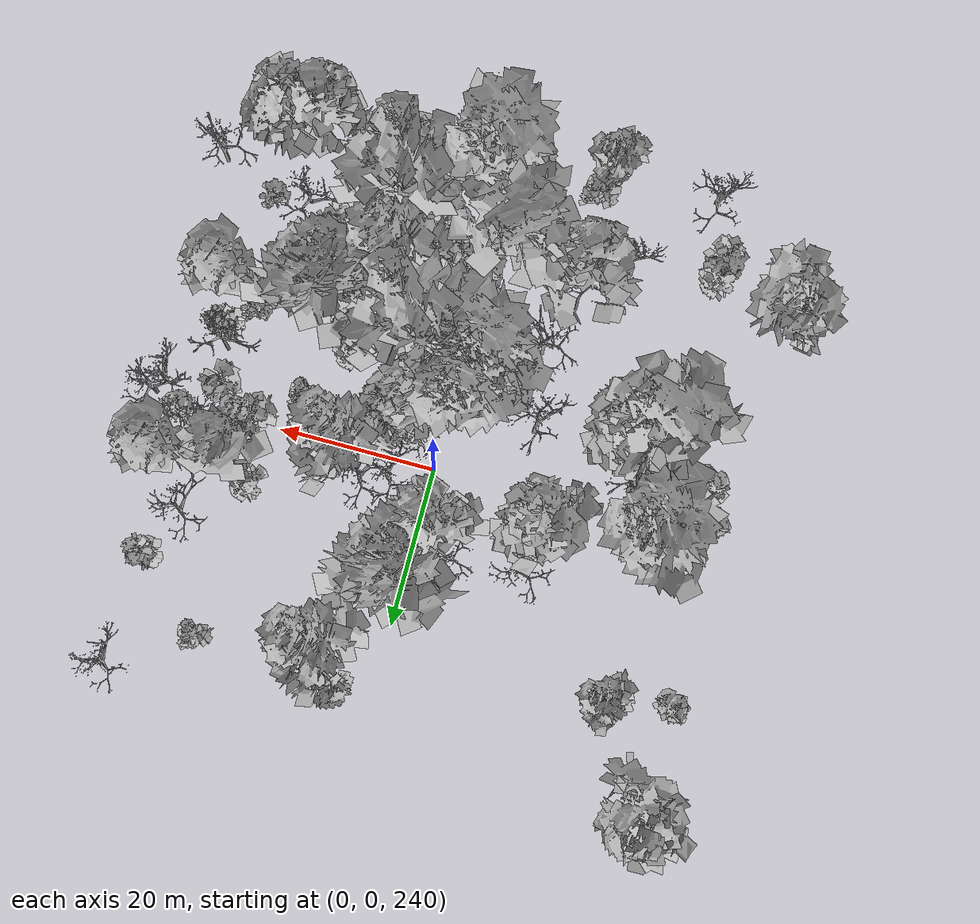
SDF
<sdf version="1.6">
 <world name="default">
  <light name="sun" type="directional">
   <pose>0 0 10 0 -0 0</pose>
   <diffuse>0.8 0.8 0.8 1</diffuse>
   <specular>0.2 0.2 0.2 1</specular>
   <attenuation>
    <range>1000</range>
    <constant>0.9</constant>
    <linear>0.01</linear>
    <quadratic>0.001</quadratic>
   </attenuation>
   <direction>-0.5 0.1 -0.9</direction>
  </light>
  <scene>
   <sky><clouds><speed>12</speed></clouds></sky>
   <ambient>0.4 0.4 0.4 1</ambient>
   <background>0.7 0.7 0.7 1</background>
   <shadows>1</shadows>
  </scene>
  <spherical_coordinates>
   <surface_model>EARTH_WGS84</surface_model>
   <latitude_deg>47.3977</latitude_deg>
   <longitude_deg>8.54559</longitude_deg>
   <elevation>0</elevation>
   <heading_deg>0</heading_deg>
  </spherical_coordinates>
  <physics name="default_physics" default="0" type="ode">
   <ode>
    <solver>
     <type>quick</type>
     <iters>100</iters>
     <sor>1.3</sor>
     <use_dynamic_moi_rescaling>0</use_dynamic_moi_rescaling>
    </solver>
    <constraints>
     <cfm>0</cfm>
     <erp>0.2</erp>
     <contact_max_correcting_vel>100</contact_max_correcting_vel>
     <contact_surface_layer>0.001</contact_surface_layer>
    </constraints>
   </ode>
   <max_step_size>0.002</max_step_size>
   <real_time_factor>1</real_time_factor>
   <real_time_update_rate>500</real_time_update_rate>
  </physics>
  <gravity>0 0 -9.8</gravity>
  <magnetic_field>6e-06 2.3e-05 -4.2e-05</magnetic_field>
  <atmosphere type="adiabatic"/>
  <model name="my_mesh0">
   <pose>-13.9708 3.09755 250.69 0 0 -1.128</pose>
   <static>1</static>
   <link name="body">
    <visual name="visual">
     <geometry><mesh><uri>model://trees/6.dae</uri><scale>1 1 1</scale></mesh></geometry>
    </visual>
    <collision name="collision">
     <geometry><mesh><uri>model://trees/6.dae</uri><scale>1 1 1</scale></mesh></geometry>
    </collision>
   </link>
  </model>
  <model name="my_mesh1">
   <pose>6.29537 -28.0253 255.617 0 -0 1.50792</pose>
   <static>1</static>
   <link name="body">
    <visual name="visual">
     <geometry><mesh><uri>model://trees/5.dae</uri><scale>1 1 1</scale></mesh></geometry>
    </visual>
    <collision name="collision">
     <geometry><mesh><uri>model://trees/5.dae</uri><scale>1 1 1</scale></mesh></geometry>
    </collision>
   </link>
  </model>
  <model name="my_mesh2">
   <pose>19.314 -17.7435 251.019 0 0 -0.445499</pose>
   <static>1</static>
   <link name="body">
    <visual name="visual">
     <geometry><mesh><uri>model://trees/13.dae</uri><scale>1 1 1</scale></mesh></geometry>
    </visual>
    <collision name="collision">
     <geometry><mesh><uri>model://trees/13.dae</uri><scale>1 1 1</scale></mesh></geometry>
    </collision>
   </link>
  </model>
  <model name="my_mesh3">
   <pose>3.94699 -5.31755 250.844 0 0 -0.624479</pose>
   <static>1</static>
   <link name="body">
    <visual name="visual">
     <geometry><mesh><uri>model://trees/13.dae</uri><scale>1 1 1</scale></mesh></geometry>
    </visual>
    <collision name="collision">
     <geometry><mesh><uri>model://trees/13.dae</uri><scale>1 1 1</scale></mesh></geometry>
    </collision>
   </link>
  </model>
  <model name="my_mesh4">
   <pose>4.03975 -10.9559 251.443 0 -0 0.019707</pose>
   <static>1</static>
   <link name="body">
    <visual name="visual">
     <geometry><mesh><uri>model://trees/16.dae</uri><scale>1 1 1</scale></mesh></geometry>
    </visual>
    <collision name="collision">
     <geometry><mesh><uri>model://trees/16.dae</uri><scale>1 1 1</scale></mesh></geometry>
    </collision>
   </link>
  </model>
  <model name="my_mesh5">
   <pose>-9.25556 -14.4743 253.795 0 -0 0.850419</pose>
   <static>1</static>
   <link name="body">
    <visual name="visual">
     <geometry><mesh><uri>model://trees/17.dae</uri><scale>1 1 1</scale></mesh></geometry>
    </visual>
    <collision name="collision">
     <geometry><mesh><uri>model://trees/17.dae</uri><scale>1 1 1</scale></mesh></geometry>
    </collision>
   </link>
  </model>
  <model name="my_mesh6">
   <pose>18.851 -15.1206 249.974 0 -0 0.692385</pose>
   <static>1</static>
   <link name="body">
    <visual name="visual">
     <geometry><mesh><uri>model://trees/3.dae</uri><scale>1 1 1</scale></mesh></geometry>
    </visual>
    <collision name="collision">
     <geometry><mesh><uri>model://trees/3.dae</uri><scale>1 1 1</scale></mesh></geometry>
    </collision>
   </link>
  </model>
  <model name="my_mesh7">
   <pose>-0.079668 -7.48304 251.797 0 -0 1.39965</pose>
   <static>1</static>
   <link name="body">
    <visual name="visual">
     <geometry><mesh><uri>model://trees/9.dae</uri><scale>1 1 1</scale></mesh></geometry>
    </visual>
    <collision name="collision">
     <geometry><mesh><uri>model://trees/9.dae</uri><scale>1 1 1</scale></mesh></geometry>
    </collision>
   </link>
  </model>
  <model name="my_mesh8">
   <pose>3.18366 -1.82805 250.547 0 0 -0.664564</pose>
   <static>1</static>
   <link name="body">
    <visual name="visual">
     <geometry><mesh><uri>model://trees/1.dae</uri><scale>1 1 1</scale></mesh></geometry>
    </visual>
    <collision name="collision">
     <geometry><mesh><uri>model://trees/1.dae</uri><scale>1 1 1</scale></mesh></geometry>
    </collision>
   </link>
  </model>
  <model name="my_mesh9">
   <pose>-10.6856 -5.44088 252.218 0 0 -0.593158</pose>
   <static>1</static>
   <link name="body">
    <visual name="visual">
     <geometry><mesh><uri>model://trees/16.dae</uri><scale>1 1 1</scale></mesh></geometry>
    </visual>
    <collision name="collision">
     <geometry><mesh><uri>model://trees/16.dae</uri><scale>1 1 1</scale></mesh></geometry>
    </collision>
   </link>
  </model>
  <model name="my_mesh10">
   <pose>-7.51004 -10.7944 252.886 0 -0 1.51829</pose>
   <static>1</static>
   <link name="body">
    <visual name="visual">
     <geometry><mesh><uri>model://trees/17.dae</uri><scale>1 1 1</scale></mesh></geometry>
    </visual>
    <collision name="collision">
     <geometry><mesh><uri>model://trees/17.dae</uri><scale>1 1 1</scale></mesh></geometry>
    </collision>
   </link>
  </model>
  <model name="my_mesh11">
   <pose>0.045641 -21.3443 253.905 0 -0 0.552601</pose>
   <static>1</static>
   <link name="body">
    <visual name="visual">
     <geometry><mesh><uri>model://trees/7.dae</uri><scale>1 1 1</scale></mesh></geometry>
    </visual>
    <collision name="collision">
     <geometry><mesh><uri>model://trees/7.dae</uri><scale>1 1 1</scale></mesh></geometry>
    </collision>
   </link>
  </model>
  <model name="my_mesh12">
   <pose>10.5547 1.24069 248.911 0 0 -0.383506</pose>
   <static>1</static>
   <link name="body">
    <visual name="visual">
     <geometry><mesh><uri>model://trees/8.dae</uri><scale>1 1 1</scale></mesh></geometry>
    </visual>
    <collision name="collision">
     <geometry><mesh><uri>model://trees/8.dae</uri><scale>1 1 1</scale></mesh></geometry>
    </collision>
   </link>
  </model>
  <model name="my_mesh13">
   <pose>-3.54292 -13.0808 252.897 0 -0 0.818565</pose>
   <static>1</static>
   <link name="body">
    <visual name="visual">
     <geometry><mesh><uri>model://trees/6.dae</uri><scale>1 1 1</scale></mesh></geometry>
    </visual>
    <collision name="collision">
     <geometry><mesh><uri>model://trees/6.dae</uri><scale>1 1 1</scale></mesh></geometry>
    </collision>
   </link>
  </model>
  <model name="my_mesh14">
   <pose>5.86461 -22.409 253.516 0 0 -0.251076</pose>
   <static>1</static>
   <link name="body">
    <visual name="visual">
     <geometry><mesh><uri>model://trees/6.dae</uri><scale>1 1 1</scale></mesh></geometry>
    </visual>
    <collision name="collision">
     <geometry><mesh><uri>model://trees/6.dae</uri><scale>1 1 1</scale></mesh></geometry>
    </collision>
   </link>
  </model>
  <model name="my_mesh15">
   <pose>0.625907 -19.9935 253.46 0 -0 1.49771</pose>
   <static>1</static>
   <link name="body">
    <visual name="visual">
     <geometry><mesh><uri>model://trees/6.dae</uri><scale>1 1 1</scale></mesh></geometry>
    </visual>
    <collision name="collision">
     <geometry><mesh><uri>model://trees/6.dae</uri><scale>1 1 1</scale></mesh></geometry>
    </collision>
   </link>
  </model>
  <model name="my_mesh16">
   <pose>-2.48042 -13.4735 252.863 0 0 -0.153819</pose>
   <static>1</static>
   <link name="body">
    <visual name="visual">
     <geometry><mesh><uri>model://trees/1.dae</uri><scale>1 1 1</scale></mesh></geometry>
    </visual>
    <collision name="collision">
     <geometry><mesh><uri>model://trees/1.dae</uri><scale>1 1 1</scale></mesh></geometry>
    </collision>
   </link>
  </model>
  <model name="my_mesh17">
   <pose>3.21184 -23.3343 253.961 0 0 -0.494991</pose>
   <static>1</static>
   <link name="body">
    <visual name="visual">
     <geometry><mesh><uri>model://trees/4.dae</uri><scale>1 1 1</scale></mesh></geometry>
    </visual>
    <collision name="collision">
     <geometry><mesh><uri>model://trees/4.dae</uri><scale>1 1 1</scale></mesh></geometry>
    </collision>
   </link>
  </model>
  <model name="my_mesh18">
   <pose>26.1369 -24.3365 251.517 0 -0 1.01427</pose>
   <static>1</static>
   <link name="body">
    <visual name="visual">
     <geometry><mesh><uri>model://trees/3.dae</uri><scale>1 1 1</scale></mesh></geometry>
    </visual>
    <collision name="collision">
     <geometry><mesh><uri>model://trees/3.dae</uri><scale>1 1 1</scale></mesh></geometry>
    </collision>
   </link>
  </model>
  <model name="my_mesh19">
   <pose>-10.9685 -31.8547 259.128 0 0 -1.01991</pose>
   <static>1</static>
   <link name="body">
    <visual name="visual">
     <geometry><mesh><uri>model://trees/6.dae</uri><scale>1 1 1</scale></mesh></geometry>
    </visual>
    <collision name="collision">
     <geometry><mesh><uri>model://trees/6.dae</uri><scale>1 1 1</scale></mesh></geometry>
    </collision>
   </link>
  </model>
  <model name="my_mesh20">
   <pose>28.748 -9.46557 246.392 0 0 -0.616625</pose>
   <static>1</static>
   <link name="body">
    <visual name="visual">
     <geometry><mesh><uri>model://trees/4.dae</uri><scale>1 1 1</scale></mesh></geometry>
    </visual>
    <collision name="collision">
     <geometry><mesh><uri>model://trees/4.dae</uri><scale>1 1 1</scale></mesh></geometry>
    </collision>
   </link>
  </model>
  <model name="my_mesh21">
   <pose>7.94749 4.43144 248.527 0 0 -0.289992</pose>
   <static>1</static>
   <link name="body">
    <visual name="visual">
     <geometry><mesh><uri>model://trees/19.dae</uri><scale>1 1 1</scale></mesh></geometry>
    </visual>
    <collision name="collision">
     <geometry><mesh><uri>model://trees/19.dae</uri><scale>1 1 1</scale></mesh></geometry>
    </collision>
   </link>
  </model>
  <model name="my_mesh22">
   <pose>22.0641 1.58668 246.744 0 0 -0.15367</pose>
   <static>1</static>
   <link name="body">
    <visual name="visual">
     <geometry><mesh><uri>model://trees/7.dae</uri><scale>1 1 1</scale></mesh></geometry>
    </visual>
    <collision name="collision">
     <geometry><mesh><uri>model://trees/7.dae</uri><scale>1 1 1</scale></mesh></geometry>
    </collision>
   </link>
  </model>
  <model name="my_mesh23">
   <pose>25.8153 -32.8797 254.311 0 -0 0.733838</pose>
   <static>1</static>
   <link name="body">
    <visual name="visual">
     <geometry><mesh><uri>model://trees/15.dae</uri><scale>1 1 1</scale></mesh></geometry>
    </visual>
    <collision name="collision">
     <geometry><mesh><uri>model://trees/15.dae</uri><scale>1 1 1</scale></mesh></geometry>
    </collision>
   </link>
  </model>
  <model name="my_mesh24">
   <pose>-26.2688 -27.6574 260.79 0 -0 1.55606</pose>
   <static>1</static>
   <link name="body">
    <visual name="visual">
     <geometry><mesh><uri>model://trees/4.dae</uri><scale>1 1 1</scale></mesh></geometry>
    </visual>
    <collision name="collision">
     <geometry><mesh><uri>model://trees/4.dae</uri><scale>1 1 1</scale></mesh></geometry>
    </collision>
   </link>
  </model>
  <model name="my_mesh25">
   <pose>5.76736 -12.9831 251.563 0 0 -0.744155</pose>
   <static>1</static>
   <link name="body">
    <visual name="visual">
     <geometry><mesh><uri>model://trees/10.dae</uri><scale>1 1 1</scale></mesh></geometry>
    </visual>
    <collision name="collision">
     <geometry><mesh><uri>model://trees/10.dae</uri><scale>1 1 1</scale></mesh></geometry>
    </collision>
   </link>
  </model>
  <model name="my_mesh26">
   <pose>5.07359 -17.5445 252.537 0 0 -0.197438</pose>
   <static>1</static>
   <link name="body">
    <visual name="visual">
     <geometry><mesh><uri>model://trees/4.dae</uri><scale>1 1 1</scale></mesh></geometry>
    </visual>
    <collision name="collision">
     <geometry><mesh><uri>model://trees/4.dae</uri><scale>1 1 1</scale></mesh></geometry>
    </collision>
   </link>
  </model>
  <model name="my_mesh27">
   <pose>-25.4239 -9.93499 253.366 0 -0 0.369416</pose>
   <static>1</static>
   <link name="body">
    <visual name="visual">
     <geometry><mesh><uri>model://trees/19.dae</uri><scale>1 1 1</scale></mesh></geometry>
    </visual>
    <collision name="collision">
     <geometry><mesh><uri>model://trees/19.dae</uri><scale>1 1 1</scale></mesh></geometry>
    </collision>
   </link>
  </model>
  <model name="my_mesh28">
   <pose>-12.2494 -23.2065 258.05 0 0 -0.923108</pose>
   <static>1</static>
   <link name="body">
    <visual name="visual">
     <geometry><mesh><uri>model://trees/12.dae</uri><scale>1 1 1</scale></mesh></geometry>
    </visual>
    <collision name="collision">
     <geometry><mesh><uri>model://trees/12.dae</uri><scale>1 1 1</scale></mesh></geometry>
    </collision>
   </link>
  </model>
  <model name="my_mesh29">
   <pose>-3.5124 -24.7743 255.485 0 -0 0.97862</pose>
   <static>1</static>
   <link name="body">
    <visual name="visual">
     <geometry><mesh><uri>model://trees/10.dae</uri><scale>1 1 1</scale></mesh></geometry>
    </visual>
    <collision name="collision">
     <geometry><mesh><uri>model://trees/10.dae</uri><scale>1 1 1</scale></mesh></geometry>
    </collision>
   </link>
  </model>
  <model name="my_mesh30">
   <pose>-15.6952 -25.9732 258.695 0 0 -1.04884</pose>
   <static>1</static>
   <link name="body">
    <visual name="visual">
     <geometry><mesh><uri>model://trees/18.dae</uri><scale>1 1 1</scale></mesh></geometry>
    </visual>
    <collision name="collision">
     <geometry><mesh><uri>model://trees/18.dae</uri><scale>1 1 1</scale></mesh></geometry>
    </collision>
   </link>
  </model>
  <model name="my_mesh31">
   <pose>-1.75816 -12.272 252.581 0 -0 1.15294</pose>
   <static>1</static>
   <link name="body">
    <visual name="visual">
     <geometry><mesh><uri>model://trees/9.dae</uri><scale>1 1 1</scale></mesh></geometry>
    </visual>
    <collision name="collision">
     <geometry><mesh><uri>model://trees/9.dae</uri><scale>1 1 1</scale></mesh></geometry>
    </collision>
   </link>
  </model>
  <model name="my_mesh32">
   <pose>-2.499 -8.95698 252.32 0 0 -0.386374</pose>
   <static>1</static>
   <link name="body">
    <visual name="visual">
     <geometry><mesh><uri>model://trees/6.dae</uri><scale>1 1 1</scale></mesh></geometry>
    </visual>
    <collision name="collision">
     <geometry><mesh><uri>model://trees/6.dae</uri><scale>1 1 1</scale></mesh></geometry>
    </collision>
   </link>
  </model>
  <model name="my_mesh33">
   <pose>6.10235 -16.1639 252.042 0 -0 0.175405</pose>
   <static>1</static>
   <link name="body">
    <visual name="visual">
     <geometry><mesh><uri>model://trees/18.dae</uri><scale>1 1 1</scale></mesh></geometry>
    </visual>
    <collision name="collision">
     <geometry><mesh><uri>model://trees/18.dae</uri><scale>1 1 1</scale></mesh></geometry>
    </collision>
   </link>
  </model>
  <model name="my_mesh34">
   <pose>-13.1437 10.5149 249.153 0 -0 0.3886</pose>
   <static>1</static>
   <link name="body">
    <visual name="visual">
     <geometry><mesh><uri>model://trees/19.dae</uri><scale>1 1 1</scale></mesh></geometry>
    </visual>
    <collision name="collision">
     <geometry><mesh><uri>model://trees/19.dae</uri><scale>1 1 1</scale></mesh></geometry>
    </collision>
   </link>
  </model>
  <model name="my_mesh35">
   <pose>-3.20475 -10.267 252.502 0 0 -1.32056</pose>
   <static>1</static>
   <link name="body">
    <visual name="visual">
     <geometry><mesh><uri>model://trees/8.dae</uri><scale>1 1 1</scale></mesh></geometry>
    </visual>
    <collision name="collision">
     <geometry><mesh><uri>model://trees/8.dae</uri><scale>1 1 1</scale></mesh></geometry>
    </collision>
   </link>
  </model>
  <model name="my_mesh36">
   <pose>10.1188 -21.3356 252.789 0 0 -0.412286</pose>
   <static>1</static>
   <link name="body">
    <visual name="visual">
     <geometry><mesh><uri>model://trees/8.dae</uri><scale>1 1 1</scale></mesh></geometry>
    </visual>
    <collision name="collision">
     <geometry><mesh><uri>model://trees/8.dae</uri><scale>1 1 1</scale></mesh></geometry>
    </collision>
   </link>
  </model>
  <model name="my_mesh37">
   <pose>3.75534 -2.25434 250.435 0 -0 0.501477</pose>
   <static>1</static>
   <link name="body">
    <visual name="visual">
     <geometry><mesh><uri>model://trees/19.dae</uri><scale>1 1 1</scale></mesh></geometry>
    </visual>
    <collision name="collision">
     <geometry><mesh><uri>model://trees/19.dae</uri><scale>1 1 1</scale></mesh></geometry>
    </collision>
   </link>
  </model>
  <model name="my_mesh38">
   <pose>16.7272 -17.0293 250.929 0 -0 0.955515</pose>
   <static>1</static>
   <link name="body">
    <visual name="visual">
     <geometry><mesh><uri>model://trees/17.dae</uri><scale>1 1 1</scale></mesh></geometry>
    </visual>
    <collision name="collision">
     <geometry><mesh><uri>model://trees/17.dae</uri><scale>1 1 1</scale></mesh></geometry>
    </collision>
   </link>
  </model>
  <model name="my_mesh39">
   <pose>17.9915 -23.026 253.182 0 0 -0.206538</pose>
   <static>1</static>
   <link name="body">
    <visual name="visual">
     <geometry><mesh><uri>model://trees/4.dae</uri><scale>1 1 1</scale></mesh></geometry>
    </visual>
    <collision name="collision">
     <geometry><mesh><uri>model://trees/4.dae</uri><scale>1 1 1</scale></mesh></geometry>
    </collision>
   </link>
  </model>
  <model name="my_mesh40">
   <pose>31.3355 1.44734 243.566 0 -0 1.33186</pose>
   <static>1</static>
   <link name="body">
    <visual name="visual">
     <geometry><mesh><uri>model://trees/2.dae</uri><scale>1 1 1</scale></mesh></geometry>
    </visual>
    <collision name="collision">
     <geometry><mesh><uri>model://trees/2.dae</uri><scale>1 1 1</scale></mesh></geometry>
    </collision>
   </link>
  </model>
  <model name="my_mesh41">
   <pose>22.1263 -25.6304 252.961 0 0 -1.19817</pose>
   <static>1</static>
   <link name="body">
    <visual name="visual">
     <geometry><mesh><uri>model://trees/18.dae</uri><scale>1 1 1</scale></mesh></geometry>
    </visual>
    <collision name="collision">
     <geometry><mesh><uri>model://trees/18.dae</uri><scale>1 1 1</scale></mesh></geometry>
    </collision>
   </link>
  </model>
  <model name="my_mesh42">
   <pose>23.9243 6.39965 245.641 0 0 -1.13198</pose>
   <static>1</static>
   <link name="body">
    <visual name="visual">
     <geometry><mesh><uri>model://trees/11.dae</uri><scale>1 1 1</scale></mesh></geometry>
    </visual>
    <collision name="collision">
     <geometry><mesh><uri>model://trees/11.dae</uri><scale>1 1 1</scale></mesh></geometry>
    </collision>
   </link>
  </model>
  <model name="my_mesh43">
   <pose>-25.8689 -25.4746 260.109 0 0 -1.17723</pose>
   <static>1</static>
   <link name="body">
    <visual name="visual">
     <geometry><mesh><uri>model://trees/1.dae</uri><scale>1 1 1</scale></mesh></geometry>
    </visual>
    <collision name="collision">
     <geometry><mesh><uri>model://trees/1.dae</uri><scale>1 1 1</scale></mesh></geometry>
    </collision>
   </link>
  </model>
  <model name="my_mesh44">
   <pose>24.9541 -11.2458 248.012 0 -0 0.748127</pose>
   <static>1</static>
   <link name="body">
    <visual name="visual">
     <geometry><mesh><uri>model://trees/3.dae</uri><scale>1 1 1</scale></mesh></geometry>
    </visual>
    <collision name="collision">
     <geometry><mesh><uri>model://trees/3.dae</uri><scale>1 1 1</scale></mesh></geometry>
    </collision>
   </link>
  </model>
  <model name="my_mesh45">
   <pose>12.5923 -9.2429 250.054 0 0 -0.91754</pose>
   <static>1</static>
   <link name="body">
    <visual name="visual">
     <geometry><mesh><uri>model://trees/0.dae</uri><scale>1 1 1</scale></mesh></geometry>
    </visual>
    <collision name="collision">
     <geometry><mesh><uri>model://trees/0.dae</uri><scale>1 1 1</scale></mesh></geometry>
    </collision>
   </link>
  </model>
  <model name="my_mesh46">
   <pose>22.6659 -33.1418 255.19 0 0 -1.49097</pose>
   <static>1</static>
   <link name="body">
    <visual name="visual">
     <geometry><mesh><uri>model://trees/15.dae</uri><scale>1 1 1</scale></mesh></geometry>
    </visual>
    <collision name="collision">
     <geometry><mesh><uri>model://trees/15.dae</uri><scale>1 1 1</scale></mesh></geometry>
    </collision>
   </link>
  </model>
  <model name="my_mesh47">
   <pose>11.8618 -16.0618 251.05 0 0 -1.00368</pose>
   <static>1</static>
   <link name="body">
    <visual name="visual">
     <geometry><mesh><uri>model://trees/13.dae</uri><scale>1 1 1</scale></mesh></geometry>
    </visual>
    <collision name="collision">
     <geometry><mesh><uri>model://trees/13.dae</uri><scale>1 1 1</scale></mesh></geometry>
    </collision>
   </link>
  </model>
  <model name="my_mesh48">
   <pose>4.20612 -23.5709 253.909 0 0 -0.367008</pose>
   <static>1</static>
   <link name="body">
    <visual name="visual">
     <geometry><mesh><uri>model://trees/2.dae</uri><scale>1 1 1</scale></mesh></geometry>
    </visual>
    <collision name="collision">
     <geometry><mesh><uri>model://trees/2.dae</uri><scale>1 1 1</scale></mesh></geometry>
    </collision>
   </link>
  </model>
  <model name="my_mesh49">
   <pose>-31.5199 -3.90331 252.375 0 -0 0.183237</pose>
   <static>1</static>
   <link name="body">
    <visual name="visual">
     <geometry><mesh><uri>model://trees/0.dae</uri><scale>1 1 1</scale></mesh></geometry>
    </visual>
    <collision name="collision">
     <geometry><mesh><uri>model://trees/0.dae</uri><scale>1 1 1</scale></mesh></geometry>
    </collision>
   </link>
  </model>
  <model name="my_mesh50">
   <pose>-2.08887 13.6141 247.23 0 0 -0.400174</pose>
   <static>1</static>
   <link name="body">
    <visual name="visual">
     <geometry><mesh><uri>model://trees/18.dae</uri><scale>1 1 1</scale></mesh></geometry>
    </visual>
    <collision name="collision">
     <geometry><mesh><uri>model://trees/18.dae</uri><scale>1 1 1</scale></mesh></geometry>
    </collision>
   </link>
  </model>
  <model name="my_mesh51">
   <pose>-25.0357 -8.41073 252.962 0 0 -0.251394</pose>
   <static>1</static>
   <link name="body">
    <visual name="visual">
     <geometry><mesh><uri>model://trees/10.dae</uri><scale>1 1 1</scale></mesh></geometry>
    </visual>
    <collision name="collision">
     <geometry><mesh><uri>model://trees/10.dae</uri><scale>1 1 1</scale></mesh></geometry>
    </collision>
   </link>
  </model>
  <model name="my_mesh52">
   <pose>8.29344 -25.3467 254.195 0 0 -0.468383</pose>
   <static>1</static>
   <link name="body">
    <visual name="visual">
     <geometry><mesh><uri>model://trees/5.dae</uri><scale>1 1 1</scale></mesh></geometry>
    </visual>
    <collision name="collision">
     <geometry><mesh><uri>model://trees/5.dae</uri><scale>1 1 1</scale></mesh></geometry>
    </collision>
   </link>
  </model>
  <model name="my_mesh53">
   <pose>17.2827 -14.4939 249.897 0 0 -1.37139</pose>
   <static>1</static>
   <link name="body">
    <visual name="visual">
     <geometry><mesh><uri>model://trees/9.dae</uri><scale>1 1 1</scale></mesh></geometry>
    </visual>
    <collision name="collision">
     <geometry><mesh><uri>model://trees/9.dae</uri><scale>1 1 1</scale></mesh></geometry>
    </collision>
   </link>
  </model>
  <model name="my_mesh54">
   <pose>4.5864 3.80926 249.239 0 0 -0.193829</pose>
   <static>1</static>
   <link name="body">
    <visual name="visual">
     <geometry><mesh><uri>model://trees/17.dae</uri><scale>1 1 1</scale></mesh></geometry>
    </visual>
    <collision name="collision">
     <geometry><mesh><uri>model://trees/17.dae</uri><scale>1 1 1</scale></mesh></geometry>
    </collision>
   </link>
  </model>
  <model name="my_mesh55">
   <pose>1.42645 -33.7985 257.892 0 -0 0.861734</pose>
   <static>1</static>
   <link name="body">
    <visual name="visual">
     <geometry><mesh><uri>model://trees/9.dae</uri><scale>1 1 1</scale></mesh></geometry>
    </visual>
    <collision name="collision">
     <geometry><mesh><uri>model://trees/9.dae</uri><scale>1 1 1</scale></mesh></geometry>
    </collision>
   </link>
  </model>
  <model name="my_mesh56">
   <pose>-1.0201 -32.4888 257.769 0 -0 0.06514</pose>
   <static>1</static>
   <link name="body">
    <visual name="visual">
     <geometry><mesh><uri>model://trees/4.dae</uri><scale>1 1 1</scale></mesh></geometry>
    </visual>
    <collision name="collision">
     <geometry><mesh><uri>model://trees/4.dae</uri><scale>1 1 1</scale></mesh></geometry>
    </collision>
   </link>
  </model>
  <model name="my_mesh57">
   <pose>10.1153 -20.7014 252.559 0 -0 1.18323</pose>
   <static>1</static>
   <link name="body">
    <visual name="visual">
     <geometry><mesh><uri>model://trees/0.dae</uri><scale>1 1 1</scale></mesh></geometry>
    </visual>
    <collision name="collision">
     <geometry><mesh><uri>model://trees/0.dae</uri><scale>1 1 1</scale></mesh></geometry>
    </collision>
   </link>
  </model>
  <model name="my_mesh58">
   <pose>-24.8122 -1.30442 251.547 0 0 -1.19022</pose>
   <static>1</static>
   <link name="body">
    <visual name="visual">
     <geometry><mesh><uri>model://trees/4.dae</uri><scale>1 1 1</scale></mesh></geometry>
    </visual>
    <collision name="collision">
     <geometry><mesh><uri>model://trees/4.dae</uri><scale>1 1 1</scale></mesh></geometry>
    </collision>
   </link>
  </model>
  <model name="my_mesh59">
   <pose>27.6212 2.93779 244.652 0 0 -1.05526</pose>
   <static>1</static>
   <link name="body">
    <visual name="visual">
     <geometry><mesh><uri>model://trees/19.dae</uri><scale>1 1 1</scale></mesh></geometry>
    </visual>
    <collision name="collision">
     <geometry><mesh><uri>model://trees/19.dae</uri><scale>1 1 1</scale></mesh></geometry>
    </collision>
   </link>
  </model>
  <model name="my_mesh60">
   <pose>-3.43461 6.69465 249.319 0 0 -0.262351</pose>
   <static>1</static>
   <link name="body">
    <visual name="visual">
     <geometry><mesh><uri>model://trees/1.dae</uri><scale>1 1 1</scale></mesh></geometry>
    </visual>
    <collision name="collision">
     <geometry><mesh><uri>model://trees/1.dae</uri><scale>1 1 1</scale></mesh></geometry>
    </collision>
   </link>
  </model>
  <model name="my_mesh61">
   <pose>29.943 -14.8167 247.363 0 -0 1.30453</pose>
   <static>1</static>
   <link name="body">
    <visual name="visual">
     <geometry><mesh><uri>model://trees/11.dae</uri><scale>1 1 1</scale></mesh></geometry>
    </visual>
    <collision name="collision">
     <geometry><mesh><uri>model://trees/11.dae</uri><scale>1 1 1</scale></mesh></geometry>
    </collision>
   </link>
  </model>
  <model name="my_mesh62">
   <pose>11.7291 -30.0633 255.735 0 -0 0.120028</pose>
   <static>1</static>
   <link name="body">
    <visual name="visual">
     <geometry><mesh><uri>model://trees/14.dae</uri><scale>1 1 1</scale></mesh></geometry>
    </visual>
    <collision name="collision">
     <geometry><mesh><uri>model://trees/14.dae</uri><scale>1 1 1</scale></mesh></geometry>
    </collision>
   </link>
  </model>
  <model name="my_mesh63">
   <pose>16.1462 -2.61016 249.028 0 0 -0.829516</pose>
   <static>1</static>
   <link name="body">
    <visual name="visual">
     <geometry><mesh><uri>model://trees/6.dae</uri><scale>1 1 1</scale></mesh></geometry>
    </visual>
    <collision name="collision">
     <geometry><mesh><uri>model://trees/6.dae</uri><scale>1 1 1</scale></mesh></geometry>
    </collision>
   </link>
  </model>
  <model name="my_mesh64">
   <pose>-23.8348 -34.4639 261.654 0 0 -0.644424</pose>
   <static>1</static>
   <link name="body">
    <visual name="visual">
     <geometry><mesh><uri>model://trees/18.dae</uri><scale>1 1 1</scale></mesh></geometry>
    </visual>
    <collision name="collision">
     <geometry><mesh><uri>model://trees/18.dae</uri><scale>1 1 1</scale></mesh></geometry>
    </collision>
   </link>
  </model>
  <model name="my_mesh65">
   <pose>-2.42043 14.3202 247.093 0 0 -0.930116</pose>
   <static>1</static>
   <link name="body">
    <visual name="visual">
     <geometry><mesh><uri>model://trees/5.dae</uri><scale>1 1 1</scale></mesh></geometry>
    </visual>
    <collision name="collision">
     <geometry><mesh><uri>model://trees/5.dae</uri><scale>1 1 1</scale></mesh></geometry>
    </collision>
   </link>
  </model>
  <model name="my_mesh66">
   <pose>30.7019 3.07819 243.664 0 0 -0.540355</pose>
   <static>1</static>
   <link name="body">
    <visual name="visual">
     <geometry><mesh><uri>model://trees/19.dae</uri><scale>1 1 1</scale></mesh></geometry>
    </visual>
    <collision name="collision">
     <geometry><mesh><uri>model://trees/19.dae</uri><scale>1 1 1</scale></mesh></geometry>
    </collision>
   </link>
  </model>
  <model name="my_mesh67">
   <pose>-23.148 -2.5974 251.82 0 0 -1.34691</pose>
   <static>1</static>
   <link name="body">
    <visual name="visual">
     <geometry><mesh><uri>model://trees/16.dae</uri><scale>1 1 1</scale></mesh></geometry>
    </visual>
    <collision name="collision">
     <geometry><mesh><uri>model://trees/16.dae</uri><scale>1 1 1</scale></mesh></geometry>
    </collision>
   </link>
  </model>
  <model name="my_mesh68">
   <pose>-14.5441 5.2834 250.317 0 0 -1.24175</pose>
   <static>1</static>
   <link name="body">
    <visual name="visual">
     <geometry><mesh><uri>model://trees/14.dae</uri><scale>1 1 1</scale></mesh></geometry>
    </visual>
    <collision name="collision">
     <geometry><mesh><uri>model://trees/14.dae</uri><scale>1 1 1</scale></mesh></geometry>
    </collision>
   </link>
  </model>
  <model name="my_mesh69">
   <pose>33.5784 -28.4779 251.682 0 -0 1.15552</pose>
   <static>1</static>
   <link name="body">
    <visual name="visual">
     <geometry><mesh><uri>model://trees/17.dae</uri><scale>1 1 1</scale></mesh></geometry>
    </visual>
    <collision name="collision">
     <geometry><mesh><uri>model://trees/17.dae</uri><scale>1 1 1</scale></mesh></geometry>
    </collision>
   </link>
  </model>
  <model name="my_mesh70">
   <pose>1.457 -9.96312 251.849 0 -0 1.35468</pose>
   <static>1</static>
   <link name="body">
    <visual name="visual">
     <geometry><mesh><uri>model://trees/15.dae</uri><scale>1 1 1</scale></mesh></geometry>
    </visual>
    <collision name="collision">
     <geometry><mesh><uri>model://trees/15.dae</uri><scale>1 1 1</scale></mesh></geometry>
    </collision>
   </link>
  </model>
  <model name="my_mesh71">
   <pose>20.655 8.57522 246.359 0 0 -1.10925</pose>
   <static>1</static>
   <link name="body">
    <visual name="visual">
     <geometry><mesh><uri>model://trees/0.dae</uri><scale>1 1 1</scale></mesh></geometry>
    </visual>
    <collision name="collision">
     <geometry><mesh><uri>model://trees/0.dae</uri><scale>1 1 1</scale></mesh></geometry>
    </collision>
   </link>
  </model>
  <model name="my_mesh72">
   <pose>35.2137 -1.94798 243.304 0 -0 0.253175</pose>
   <static>1</static>
   <link name="body">
    <visual name="visual">
     <geometry><mesh><uri>model://trees/18.dae</uri><scale>1 1 1</scale></mesh></geometry>
    </visual>
    <collision name="collision">
     <geometry><mesh><uri>model://trees/18.dae</uri><scale>1 1 1</scale></mesh></geometry>
    </collision>
   </link>
  </model>
  <model name="my_mesh73">
   <pose>-26.1412 21.9947 246.856 0 0 -0.032575</pose>
   <static>1</static>
   <link name="body">
    <visual name="visual">
     <geometry><mesh><uri>model://trees/7.dae</uri><scale>1 1 1</scale></mesh></geometry>
    </visual>
    <collision name="collision">
     <geometry><mesh><uri>model://trees/7.dae</uri><scale>1 1 1</scale></mesh></geometry>
    </collision>
   </link>
  </model>
  <model name="my_mesh74">
   <pose>0.342729 14.6226 246.794 0 0 -1.27788</pose>
   <static>1</static>
   <link name="body">
    <visual name="visual">
     <geometry><mesh><uri>model://trees/9.dae</uri><scale>1 1 1</scale></mesh></geometry>
    </visual>
    <collision name="collision">
     <geometry><mesh><uri>model://trees/9.dae</uri><scale>1 1 1</scale></mesh></geometry>
    </collision>
   </link>
  </model>
  <model name="my_mesh75">
   <pose>6.21191 -2.72701 250.009 0 0 -0.42573</pose>
   <static>1</static>
   <link name="body">
    <visual name="visual">
     <geometry><mesh><uri>model://trees/7.dae</uri><scale>1 1 1</scale></mesh></geometry>
    </visual>
    <collision name="collision">
     <geometry><mesh><uri>model://trees/7.dae</uri><scale>1 1 1</scale></mesh></geometry>
    </collision>
   </link>
  </model>
  <model name="my_mesh76">
   <pose>7.42756 24.1121 244.665 0 0 -0.036681</pose>
   <static>1</static>
   <link name="body">
    <visual name="visual">
     <geometry><mesh><uri>model://trees/8.dae</uri><scale>1 1 1</scale></mesh></geometry>
    </visual>
    <collision name="collision">
     <geometry><mesh><uri>model://trees/8.dae</uri><scale>1 1 1</scale></mesh></geometry>
    </collision>
   </link>
  </model>
  <model name="my_mesh77">
   <pose>28.3617 13.3705 243.581 0 -0 0.017518</pose>
   <static>1</static>
   <link name="body">
    <visual name="visual">
     <geometry><mesh><uri>model://trees/19.dae</uri><scale>1 1 1</scale></mesh></geometry>
    </visual>
    <collision name="collision">
     <geometry><mesh><uri>model://trees/19.dae</uri><scale>1 1 1</scale></mesh></geometry>
    </collision>
   </link>
  </model>
  <model name="my_mesh78">
   <pose>-0.490998 -16.7929 253.189 0 -0 0.95506</pose>
   <static>1</static>
   <link name="body">
    <visual name="visual">
     <geometry><mesh><uri>model://trees/19.dae</uri><scale>1 1 1</scale></mesh></geometry>
    </visual>
    <collision name="collision">
     <geometry><mesh><uri>model://trees/19.dae</uri><scale>1 1 1</scale></mesh></geometry>
    </collision>
   </link>
  </model>
  <model name="my_mesh79">
   <pose>27.881 -6.89772 246.54 0 0 -1.43068</pose>
   <static>1</static>
   <link name="body">
    <visual name="visual">
     <geometry><mesh><uri>model://trees/16.dae</uri><scale>1 1 1</scale></mesh></geometry>
    </visual>
    <collision name="collision">
     <geometry><mesh><uri>model://trees/16.dae</uri><scale>1 1 1</scale></mesh></geometry>
    </collision>
   </link>
  </model>
  <model name="my_mesh80">
   <pose>-1.59819 9.05841 248.461 0 0 -0.987849</pose>
   <static>1</static>
   <link name="body">
    <visual name="visual">
     <geometry><mesh><uri>model://trees/15.dae</uri><scale>1 1 1</scale></mesh></geometry>
    </visual>
    <collision name="collision">
     <geometry><mesh><uri>model://trees/15.dae</uri><scale>1 1 1</scale></mesh></geometry>
    </collision>
   </link>
  </model>
  <model name="my_mesh81">
   <pose>-26.4664 1.91202 250.772 0 -0 0.484548</pose>
   <static>1</static>
   <link name="body">
    <visual name="visual">
     <geometry><mesh><uri>model://trees/9.dae</uri><scale>1 1 1</scale></mesh></geometry>
    </visual>
    <collision name="collision">
     <geometry><mesh><uri>model://trees/9.dae</uri><scale>1 1 1</scale></mesh></geometry>
    </collision>
   </link>
  </model>
  <model name="my_mesh82">
   <pose>35.6589 -0.041051 242.854 0 0 -0.981182</pose>
   <static>1</static>
   <link name="body">
    <visual name="visual">
     <geometry><mesh><uri>model://trees/17.dae</uri><scale>1 1 1</scale></mesh></geometry>
    </visual>
    <collision name="collision">
     <geometry><mesh><uri>model://trees/17.dae</uri><scale>1 1 1</scale></mesh></geometry>
    </collision>
   </link>
  </model>
  <model name="my_mesh83">
   <pose>4.13241 -17.5731 252.613 0 0 -0.472743</pose>
   <static>1</static>
   <link name="body">
    <visual name="visual">
     <geometry><mesh><uri>model://trees/6.dae</uri><scale>1 1 1</scale></mesh></geometry>
    </visual>
    <collision name="collision">
     <geometry><mesh><uri>model://trees/6.dae</uri><scale>1 1 1</scale></mesh></geometry>
    </collision>
   </link>
  </model>
  <model name="my_mesh84">
   <pose>27.2031 -2.3451 245.235 0 0 -0.250933</pose>
   <static>1</static>
   <link name="body">
    <visual name="visual">
     <geometry><mesh><uri>model://trees/5.dae</uri><scale>1 1 1</scale></mesh></geometry>
    </visual>
    <collision name="collision">
     <geometry><mesh><uri>model://trees/5.dae</uri><scale>1 1 1</scale></mesh></geometry>
    </collision>
   </link>
  </model>
  <model name="my_mesh85">
   <pose>30.9616 19.602 242.091 0 0 -0.693842</pose>
   <static>1</static>
   <link name="body">
    <visual name="visual">
     <geometry><mesh><uri>model://trees/4.dae</uri><scale>1 1 1</scale></mesh></geometry>
    </visual>
    <collision name="collision">
     <geometry><mesh><uri>model://trees/4.dae</uri><scale>1 1 1</scale></mesh></geometry>
    </collision>
   </link>
  </model>
  <model name="my_mesh86">
   <pose>-21.3436 -7.75793 252.751 0 0 -0.996486</pose>
   <static>1</static>
   <link name="body">
    <visual name="visual">
     <geometry><mesh><uri>model://trees/14.dae</uri><scale>1 1 1</scale></mesh></geometry>
    </visual>
    <collision name="collision">
     <geometry><mesh><uri>model://trees/14.dae</uri><scale>1 1 1</scale></mesh></geometry>
    </collision>
   </link>
  </model>
  <model name="my_mesh87">
   <pose>-34.1789 -24.3214 260.127 0 -0 0.062783</pose>
   <static>1</static>
   <link name="body">
    <visual name="visual">
     <geometry><mesh><uri>model://trees/13.dae</uri><scale>1 1 1</scale></mesh></geometry>
    </visual>
    <collision name="collision">
     <geometry><mesh><uri>model://trees/13.dae</uri><scale>1 1 1</scale></mesh></geometry>
    </collision>
   </link>
  </model>
  <model name="my_mesh88">
   <pose>-33.1596 0.017919 251.317 0 -0 1.40119</pose>
   <static>1</static>
   <link name="body">
    <visual name="visual">
     <geometry><mesh><uri>model://trees/2.dae</uri><scale>1 1 1</scale></mesh></geometry>
    </visual>
    <collision name="collision">
     <geometry><mesh><uri>model://trees/2.dae</uri><scale>1 1 1</scale></mesh></geometry>
    </collision>
   </link>
  </model>
  <model name="my_mesh89">
   <pose>21.7852 27.3243 242.484 0 0 -0.660802</pose>
   <static>1</static>
   <link name="body">
    <visual name="visual">
     <geometry><mesh><uri>model://trees/6.dae</uri><scale>1 1 1</scale></mesh></geometry>
    </visual>
    <collision name="collision">
     <geometry><mesh><uri>model://trees/6.dae</uri><scale>1 1 1</scale></mesh></geometry>
    </collision>
   </link>
  </model>
  <model name="my_mesh90">
   <pose>32.9368 33.2529 239.724 0 -0 0.121538</pose>
   <static>1</static>
   <link name="body">
    <visual name="visual">
     <geometry><mesh><uri>model://trees/18.dae</uri><scale>1 1 1</scale></mesh></geometry>
    </visual>
    <collision name="collision">
     <geometry><mesh><uri>model://trees/18.dae</uri><scale>1 1 1</scale></mesh></geometry>
    </collision>
   </link>
  </model>
  <model name="my_mesh91">
   <pose>4.17697 29.1975 243.808 0 -0 0.569676</pose>
   <static>1</static>
   <link name="body">
    <visual name="visual">
     <geometry><mesh><uri>model://trees/4.dae</uri><scale>1 1 1</scale></mesh></geometry>
    </visual>
    <collision name="collision">
     <geometry><mesh><uri>model://trees/4.dae</uri><scale>1 1 1</scale></mesh></geometry>
    </collision>
   </link>
  </model>
  <model name="my_mesh92">
   <pose>32.889 6.89987 242.785 0 -0 1.36178</pose>
   <static>1</static>
   <link name="body">
    <visual name="visual">
     <geometry><mesh><uri>model://trees/11.dae</uri><scale>1 1 1</scale></mesh></geometry>
    </visual>
    <collision name="collision">
     <geometry><mesh><uri>model://trees/11.dae</uri><scale>1 1 1</scale></mesh></geometry>
    </collision>
   </link>
  </model>
  <model name="my_mesh93">
   <pose>10.4205 -28.0703 255.258 0 0 -1.10741</pose>
   <static>1</static>
   <link name="body">
    <visual name="visual">
     <geometry><mesh><uri>model://trees/10.dae</uri><scale>1 1 1</scale></mesh></geometry>
    </visual>
    <collision name="collision">
     <geometry><mesh><uri>model://trees/10.dae</uri><scale>1 1 1</scale></mesh></geometry>
    </collision>
   </link>
  </model>
  <model name="my_mesh94">
   <pose>-33.5913 35.1655 245.093 0 0 -0.601178</pose>
   <static>1</static>
   <link name="body">
    <visual name="visual">
     <geometry><mesh><uri>model://trees/19.dae</uri><scale>1 1 1</scale></mesh></geometry>
    </visual>
    <collision name="collision">
     <geometry><mesh><uri>model://trees/19.dae</uri><scale>1 1 1</scale></mesh></geometry>
    </collision>
   </link>
  </model>
  <model name="my_mesh95">
   <pose>-11.8851 -35.2324 260.097 0 0 -0.002226</pose>
   <static>1</static>
   <link name="body">
    <visual name="visual">
     <geometry><mesh><uri>model://trees/7.dae</uri><scale>1 1 1</scale></mesh></geometry>
    </visual>
    <collision name="collision">
     <geometry><mesh><uri>model://trees/7.dae</uri><scale>1 1 1</scale></mesh></geometry>
    </collision>
   </link>
  </model>
  <model name="my_mesh96">
   <pose>-32.9443 33.4798 245.455 0 -0 0.182775</pose>
   <static>1</static>
   <link name="body">
    <visual name="visual">
     <geometry><mesh><uri>model://trees/14.dae</uri><scale>1 1 1</scale></mesh></geometry>
    </visual>
    <collision name="collision">
     <geometry><mesh><uri>model://trees/14.dae</uri><scale>1 1 1</scale></mesh></geometry>
    </collision>
   </link>
  </model>
  <model name="my_mesh97">
   <pose>-3.96459 11.8785 247.745 0 -0 1.24267</pose>
   <static>1</static>
   <link name="body">
    <visual name="visual">
     <geometry><mesh><uri>model://trees/19.dae</uri><scale>1 1 1</scale></mesh></geometry>
    </visual>
    <collision name="collision">
     <geometry><mesh><uri>model://trees/19.dae</uri><scale>1 1 1</scale></mesh></geometry>
    </collision>
   </link>
  </model>
  <model name="my_mesh98">
   <pose>-34.1543 21.17 247.333 0 -0 0.759023</pose>
   <static>1</static>
   <link name="body">
    <visual name="visual">
     <geometry><mesh><uri>model://trees/2.dae</uri><scale>1 1 1</scale></mesh></geometry>
    </visual>
    <collision name="collision">
     <geometry><mesh><uri>model://trees/2.dae</uri><scale>1 1 1</scale></mesh></geometry>
    </collision>
   </link>
  </model>
 </world>
</sdf>
